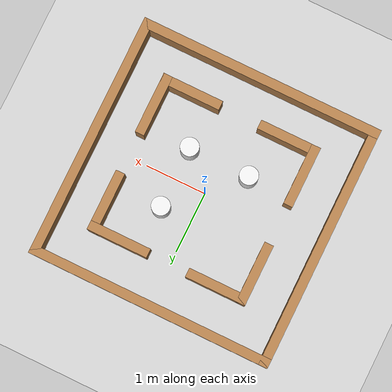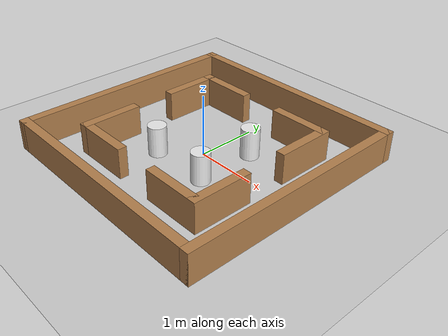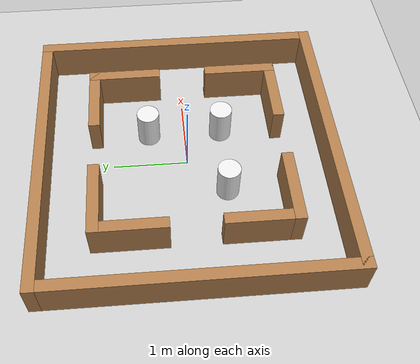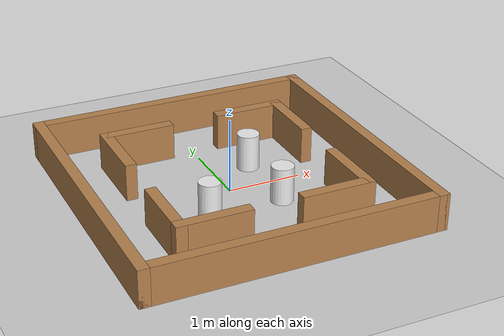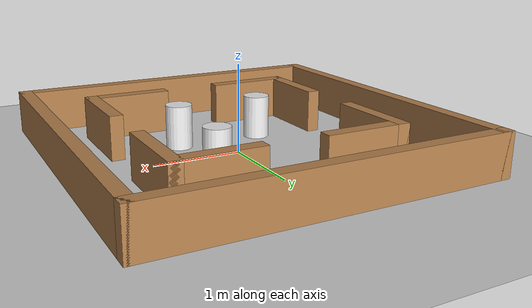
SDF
<sdf version="1.7">
 <world name="default">
  <light name="sun" type="directional">
   <pose>0 0 10 0 -0 0</pose>
   <diffuse>0.8 0.8 0.8 1</diffuse>
   <specular>0.2 0.2 0.2 1</specular>
   <attenuation>
    <range>1000</range>
    <constant>0.9</constant>
    <linear>0.01</linear>
    <quadratic>0.001</quadratic>
   </attenuation>
   <direction>-0.5 0.1 -0.9</direction>
   <spot><inner_angle>0</inner_angle><outer_angle>0</outer_angle><falloff>0</falloff></spot>
  </light>
  <model name="ground_plane">
   <static>1</static>
   <link name="link">
    <collision name="collision">
     <geometry><plane><normal>0 0 1</normal><size>100 100</size></plane></geometry>
     <surface><friction><ode><mu>100</mu><mu2>50</mu2></ode></friction></surface>
    </collision>
    <visual name="visual">
     <cast_shadows>0</cast_shadows>
     <geometry><plane><normal>0 0 1</normal><size>100 100</size></plane></geometry>
     <material>
      <script><uri>file://media/materials/scripts/gazebo.material</uri><name>Gazebo/Grey</name></script>
     </material>
    </visual>
   </link>
  </model>
  <gravity>0 0 -9.8</gravity>
  <magnetic_field>6e-06 2.3e-05 -4.2e-05</magnetic_field>
  <atmosphere type="adiabatic"/>
  <physics type="ode">
   <max_step_size>0.001</max_step_size>
   <real_time_factor>1</real_time_factor>
   <real_time_update_rate>1000</real_time_update_rate>
  </physics>
  <scene><ambient>0.4 0.4 0.4 1</ambient><background>0.7 0.7 0.7 1</background><shadows>1</shadows></scene>
  <spherical_coordinates>
   <surface_model>EARTH_WGS84</surface_model>
   <latitude_deg>0</latitude_deg>
   <longitude_deg>0</longitude_deg>
   <elevation>0</elevation>
   <heading_deg>0</heading_deg>
  </spherical_coordinates>
  <model name="square">
   <pose>1.38631 0.76942 0 0 -0 0</pose>
   <link name="Wall_0">
    <collision name="Wall_0_Collision">
     <geometry><box><size>1 0.15 0.5</size></box></geometry>
     <pose>0 0 0.25 0 -0 0</pose>
    </collision>
    <visual name="Wall_0_Visual">
     <pose>0 0 0.25 0 -0 0</pose>
     <geometry><box><size>1 0.15 0.5</size></box></geometry>
     <material>
      <script><uri>file://media/materials/scripts/gazebo.material</uri><name>Gazebo/Wood</name></script>
      <ambient>1 1 1 1</ambient>
     </material>
     <meta><layer>0</layer></meta>
    </visual>
    <pose>-2.6125 0.0325 0 0 -0 1.5708</pose>
   </link>
   <link name="Wall_1">
    <collision name="Wall_1_Collision">
     <geometry><box><size>1 0.15 0.5</size></box></geometry>
     <pose>0 0 0.25 0 -0 0</pose>
    </collision>
    <visual name="Wall_1_Visual">
     <pose>0 0 0.25 0 -0 0</pose>
     <geometry><box><size>1 0.15 0.5</size></box></geometry>
     <material>
      <script><uri>file://media/materials/scripts/gazebo.material</uri><name>Gazebo/Wood</name></script>
      <ambient>1 1 1 1</ambient>
     </material>
     <meta><layer>0</layer></meta>
    </visual>
    <pose>-2.1875 0.4575 0 0 -0 0</pose>
   </link>
   <link name="Wall_18">
    <collision name="Wall_18_Collision">
     <geometry><box><size>1 0.15 0.5</size></box></geometry>
     <pose>0 0 0.25 0 -0 0</pose>
    </collision>
    <visual name="Wall_18_Visual">
     <pose>0 0 0.25 0 -0 0</pose>
     <geometry><box><size>1 0.15 0.5</size></box></geometry>
     <material>
      <script><uri>file://media/materials/scripts/gazebo.material</uri><name>Gazebo/Wood</name></script>
      <ambient>1 1 1 1</ambient>
     </material>
     <meta><layer>0</layer></meta>
    </visual>
    <pose>-0.1125 -1.6175 0 0 -0 1.5708</pose>
   </link>
   <link name="Wall_3">
    <collision name="Wall_3_Collision">
     <geometry><box><size>1 0.15 0.5</size></box></geometry>
     <pose>0 0 0.25 0 -0 0</pose>
    </collision>
    <visual name="Wall_3_Visual">
     <pose>0 0 0.25 0 -0 0</pose>
     <geometry><box><size>1 0.15 0.5</size></box></geometry>
     <material>
      <script><uri>file://media/materials/scripts/gazebo.material</uri><name>Gazebo/Wood</name></script>
      <ambient>1 1 1 1</ambient>
     </material>
     <meta><layer>0</layer></meta>
    </visual>
    <pose>-0.5375 0.4575 0 0 -0 0</pose>
   </link>
   <link name="Wall_4">
    <collision name="Wall_4_Collision">
     <geometry><box><size>1 0.15 0.5</size></box></geometry>
     <pose>0 0 0.25 0 -0 0</pose>
    </collision>
    <visual name="Wall_4_Visual">
     <pose>0 0 0.25 0 -0 0</pose>
     <geometry><box><size>1 0.15 0.5</size></box></geometry>
     <material>
      <script><uri>file://media/materials/scripts/gazebo.material</uri><name>Gazebo/Wood</name></script>
      <ambient>1 1 1 1</ambient>
     </material>
     <meta><layer>0</layer></meta>
    </visual>
    <pose>-0.1125 0.0325 0 0 -0 -1.5708</pose>
   </link>
   <link name="Wall_6">
    <collision name="Wall_6_Collision">
     <geometry><box><size>1 0.15 0.5</size></box></geometry>
     <pose>0 0 0.25 0 -0 0</pose>
    </collision>
    <visual name="Wall_6_Visual">
     <pose>0 0 0.25 0 -0 0</pose>
     <geometry><box><size>1 0.15 0.5</size></box></geometry>
     <material>
      <script><uri>file://media/materials/scripts/gazebo.material</uri><name>Gazebo/Wood</name></script>
      <ambient>1 1 1 1</ambient>
     </material>
     <meta><layer>0</layer></meta>
    </visual>
    <pose>-0.5375 -2.0425 0 0 -0 3.14159</pose>
   </link>
   <link name="Wall_8">
    <collision name="Wall_8_Collision">
     <geometry><box><size>1 0.15 0.5</size></box></geometry>
     <pose>0 0 0.25 0 -0 0</pose>
    </collision>
    <visual name="Wall_8_Visual">
     <pose>0 0 0.25 0 -0 0</pose>
     <geometry><box><size>1 0.15 0.5</size></box></geometry>
     <material>
      <script><uri>file://media/materials/scripts/gazebo.material</uri><name>Gazebo/Wood</name></script>
      <ambient>1 1 1 1</ambient>
     </material>
     <meta><layer>0</layer></meta>
    </visual>
    <pose>-2.1875 -2.0425 0 0 -0 3.14159</pose>
   </link>
   <link name="Wall_9">
    <collision name="Wall_9_Collision">
     <geometry><box><size>1 0.15 0.5</size></box></geometry>
     <pose>0 0 0.25 0 -0 0</pose>
    </collision>
    <visual name="Wall_9_Visual">
     <pose>0 0 0.25 0 -0 0</pose>
     <geometry><box><size>1 0.15 0.5</size></box></geometry>
     <material>
      <script><uri>file://media/materials/scripts/gazebo.material</uri><name>Gazebo/Wood</name></script>
      <ambient>1 1 1 1</ambient>
     </material>
     <meta><layer>0</layer></meta>
    </visual>
    <pose>-2.6125 -1.6175 0 0 -0 1.5708</pose>
   </link>
   <static>1</static>
  </model>
  <model name="turtlebot3_square">
   <pose>-0.011809 0.00355 0 0 -0 0</pose>
   <link name="Wall_0">
    <collision name="Wall_0_Collision">
     <geometry><box><size>4 0.15 0.5</size></box></geometry>
     <pose>0 0 0.25 0 -0 0</pose>
    </collision>
    <visual name="Wall_0_Visual">
     <pose>0 0 0.25 0 -0 0</pose>
     <geometry><box><size>4 0.15 0.5</size></box></geometry>
     <material>
      <script><uri>file://media/materials/scripts/gazebo.material</uri><name>Gazebo/Wood</name></script>
      <ambient>1 1 1 1</ambient>
     </material>
    </visual>
    <pose>0 1.925 0 0 -0 0</pose>
   </link>
   <link name="Wall_2">
    <collision name="Wall_2_Collision">
     <geometry><box><size>4 0.15 0.5</size></box></geometry>
     <pose>0 0 0.25 0 -0 0</pose>
    </collision>
    <visual name="Wall_2_Visual">
     <pose>0 0 0.25 0 -0 0</pose>
     <geometry><box><size>4 0.15 0.5</size></box></geometry>
     <material>
      <script><uri>file://media/materials/scripts/gazebo.material</uri><name>Gazebo/Wood</name></script>
      <ambient>1 1 1 1</ambient>
     </material>
    </visual>
    <pose>-1.925 0 0 0 0 -1.5708</pose>
   </link>
   <link name="Wall_3">
    <collision name="Wall_3_Collision">
     <geometry><box><size>4 0.15 0.5</size></box></geometry>
     <pose>0 0 0.25 0 -0 0</pose>
    </collision>
    <visual name="Wall_3_Visual">
     <pose>0 0 0.25 0 -0 0</pose>
     <geometry><box><size>4 0.15 0.5</size></box></geometry>
     <material>
      <script><uri>file://media/materials/scripts/gazebo.material</uri><name>Gazebo/Wood</name></script>
      <ambient>1 1 1 1</ambient>
     </material>
    </visual>
    <pose>0 -1.925 0 0 -0 0</pose>
   </link>
   <link name="Wall_4">
    <collision name="Wall_4_Collision">
     <geometry><box><size>4 0.15 0.5</size></box></geometry>
     <pose>0 0 0.25 0 -0 0</pose>
    </collision>
    <visual name="Wall_4_Visual">
     <pose>0 0 0.25 0 -0 0</pose>
     <geometry><box><size>4 0.15 0.5</size></box></geometry>
     <material>
      <script><uri>file://media/materials/scripts/gazebo.material</uri><name>Gazebo/Wood</name></script>
      <ambient>1 1 1 1</ambient>
     </material>
    </visual>
    <pose>1.925 0 0 0 -0 1.5708</pose>
   </link>
   <static>1</static>
  </model>
  <model name="obstacle">
   <link name="obstacle">
    <collision name="obstacle_1">
     <pose>-0.5 -0.5 0.25 0 -0 0</pose>
     <geometry><cylinder><radius>0.15</radius><length>0.5</length></cylinder></geometry>
    </collision>
    <collision name="obstacle_10">
     <pose>0.5 -0.5 0.25 0 -0 0</pose>
     <geometry><cylinder><radius>0.15</radius><length>0.5</length></cylinder></geometry>
    </collision>
    <visual name="obstacle_10">
     <pose>0.5 -0.5 0.25 0 -0 0</pose>
     <geometry><cylinder><radius>0.15</radius><length>0.5</length></cylinder></geometry>
     <material>
      <script><uri>file://media/materials/scripts/gazebo.material</uri><name>Gazebo/White</name></script>
     </material>
    </visual>
    <collision name="obstacle_11">
     <pose>-0.5 -0.5 0.25 0 -0 0</pose>
     <geometry><cylinder><radius>0.15</radius><length>0.5</length></cylinder></geometry>
    </collision>
    <visual name="obstacle_11">
     <pose>-0.5 -0.5 0.25 0 -0 0</pose>
     <geometry><cylinder><radius>0.15</radius><length>0.5</length></cylinder></geometry>
     <material>
      <script><uri>file://media/materials/scripts/gazebo.material</uri><name>Gazebo/White</name></script>
     </material>
    </visual>
    <collision name="obstacle_12">
     <pose>0.5 0.5 0.25 0 -0 0</pose>
     <geometry><cylinder><radius>0.15</radius><length>0.5</length></cylinder></geometry>
    </collision>
    <visual name="obstacle_12">
     <pose>0.5 0.5 0.25 0 -0 0</pose>
     <geometry><cylinder><radius>0.15</radius><length>0.5</length></cylinder></geometry>
     <material>
      <script><uri>file://media/materials/scripts/gazebo.material</uri><name>Gazebo/White</name></script>
     </material>
    </visual>
   </link>
   <static>1</static>
  </model>
 </world>
</sdf>
